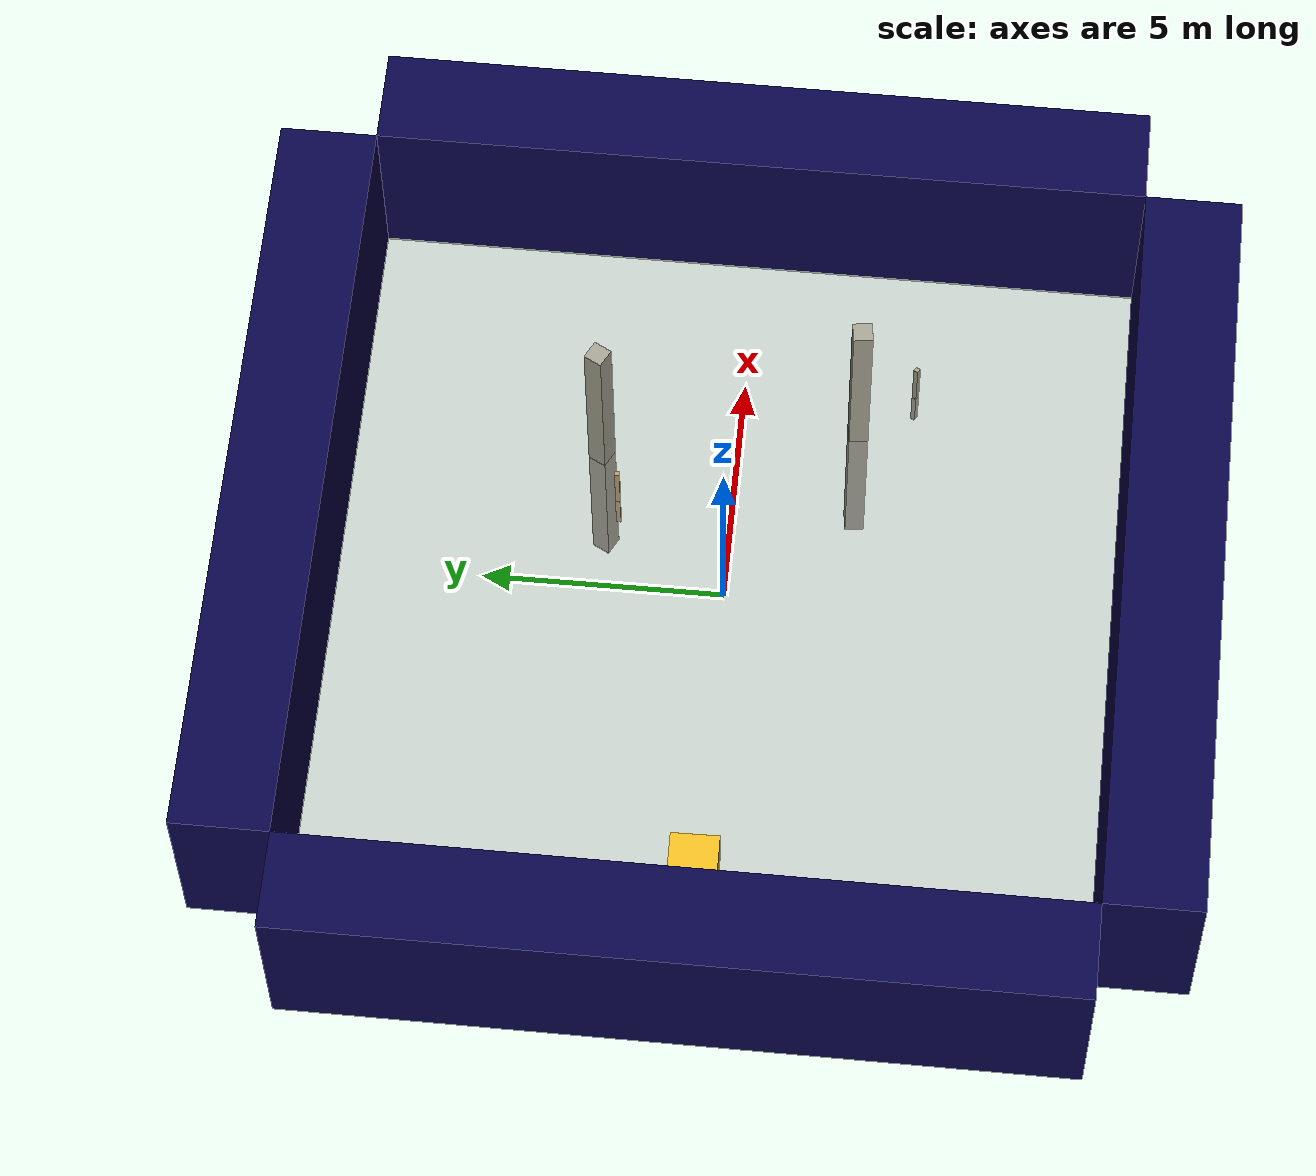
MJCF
<mujoco model="unnamed_model">
  <default>
    <default class="/" />
    <default class="border/" />
    <default class="border_1/" />
    <default class="border_2/" />
    <default class="border_3/" />
    <default class="light/" />
    <default class="agent/" />
    <default class="stone0/" />
    <default class="stone1/" />
    <default class="apple/" />
    <default class="apple_1/" />
  </default>
  <worldbody>
    <body name="border/">
      <body name="border/border" pos="0 9 2">
        <geom name="border/border_geom" class="border/" type="box" size="8.0 1.0 2.0" rgba="0.035 0.016 0.29 1.0" />
      </body>
    </body>
    <body name="border_1/">
      <body name="border_1/border" pos="0 -9 2">
        <geom name="border_1/border_geom" class="border_1/" type="box" size="8.0 1.0 2.0" rgba="0.035 0.016 0.29 1.0" />
      </body>
    </body>
    <body name="border_2/">
      <body name="border_2/border" pos="9 0 2">
        <geom name="border_2/border_geom" class="border_2/" type="box" size="1.0 8.0 2.0" rgba="0.035 0.016 0.29 1.0" />
      </body>
    </body>
    <body name="border_3/">
      <body name="border_3/border" pos="-9 0 2">
        <geom name="border_3/border_geom" class="border_3/" type="box" size="1.0 8.0 2.0" rgba="0.035 0.016 0.29 1.0" />
      </body>
    </body>
    <body name="light/">
      <body name="light/light" pos="0 0 15">
        <geom name="light/light_geom" class="light/" size="0.5" rgba="1.0 1.0 1.0 0.0" />
        <light name="light//unnamed_light_0" class="light/" />
      </body>
    </body>
    <body euler="0 0 270.90186651030518" name="agent/" pos="-6.4000000000000004 0 0.5">
      <joint name="agent/boxagent_freeJoint/" class="/" type="free" />
      <body name="agent/agent" pos="0 0 0" euler="0 0 0">
        <geom name="agent/boxagent_geom" class="agent/" type="box" size="0.5 0.5 0.5" rgba="0.949 0.7451 0.1333 1.0" euler="0 0 0" />
        <camera name="agent/boxagent_camera" class="agent/" fovy="90" pos="0 0 0.25" euler="-90 180 0" />
      </body>
    </body>
    <body name="stone0/">
      <body name="stone0/stone0" pos="3.1266500000000002 2.8545999999999996 0.10000000000000001" euler="0 0 62.21831651410119">
        <geom name="stone0/stone_geom" class="stone0/" type="box" size="0.2 0.2 4.0" rgba="0.6470588235294118 0.6392156862745098 0.5686274509803921 1.0" />
      </body>
    </body>
    <body name="stone1/">
      <body name="stone1/stone1" pos="2.0773999999999999 2.4114000000000004 0.10000000000000001" euler="0 0 -86.979756615313235">
        <geom name="stone1/stone_geom" class="stone1/" type="box" size="0.05 0.05 1.0" rgba="0.6980392156862745 0.6 0.43137254901960786 1.0" />
      </body>
    </body>
    <body name="apple/">
      <body name="apple/apple" pos="4.1454500000000003 -2.4485000000000001 0.10000000000000001" euler="0 0 -172.0895107711217">
        <geom name="apple/apple_geom" class="apple/" type="box" size="0.2 0.2 4.0" rgba="0.6470588235294118 0.6392156862745098 0.5686274509803921 1.0" />
      </body>
    </body>
    <body name="apple_1/">
      <body name="apple_1/apple" pos="5.1334499999999998 -3.5854999999999997 0.10000000000000001" euler="0 0 -32.881019443660904">
        <geom name="apple_1/apple_geom" class="apple_1/" type="box" size="0.05 0.05 1.0" rgba="0.6470588235294118 0.6392156862745098 0.5686274509803921 1.0" />
      </body>
    </body>
    <geom name="base_plane" class="/" type="plane" size="8 8 0.10000000000000001" />
  </worldbody>
</mujoco>
